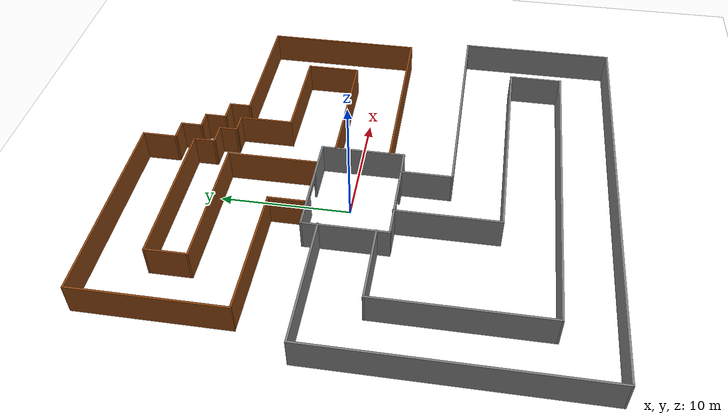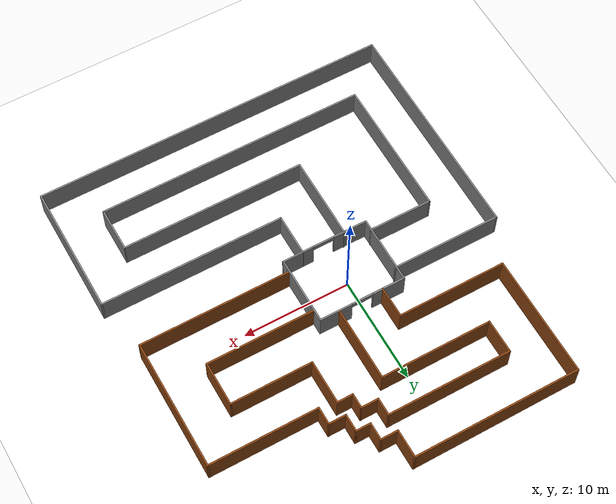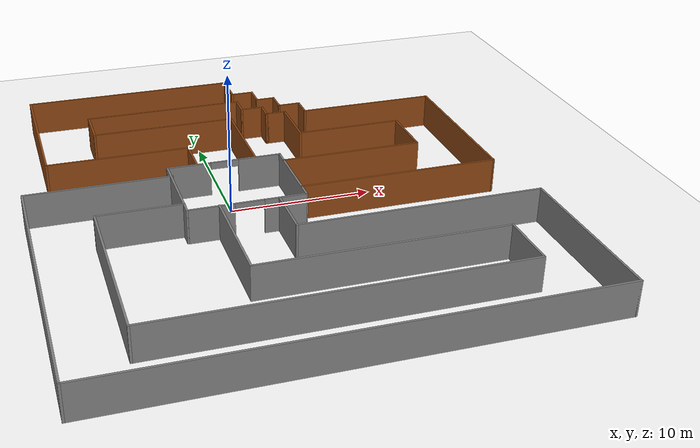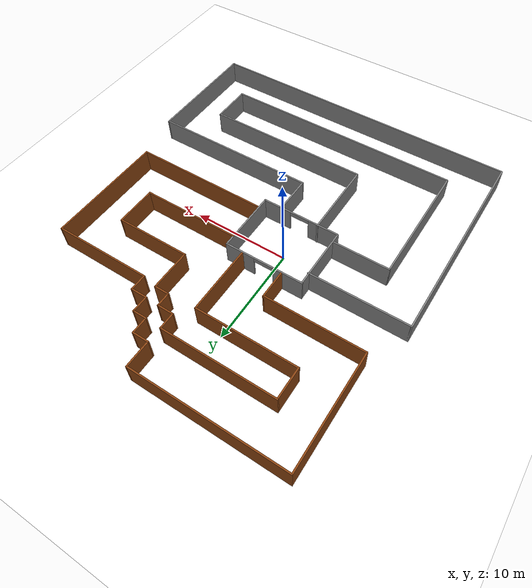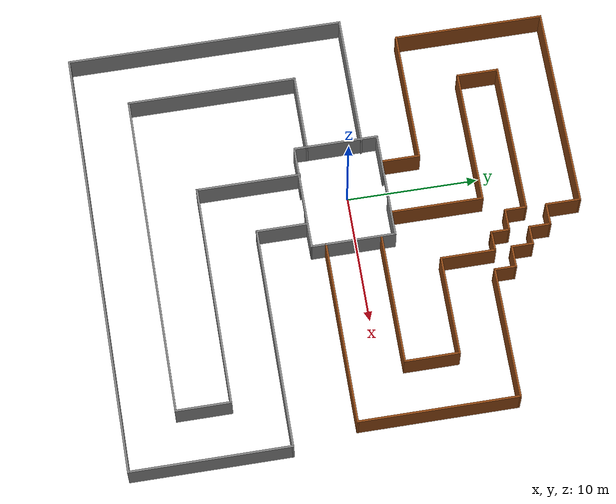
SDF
<sdf version='1.9'>
  <world name='default'>
    <gravity>0 0 -9.8</gravity>
    <magnetic_field>6e-06 2.3e-05 -4.2e-05</magnetic_field>
    <atmosphere type='adiabatic'/>
    <physics type='ode'>
      <max_step_size>0.001</max_step_size>
      <real_time_factor>1</real_time_factor>
      <real_time_update_rate>1000</real_time_update_rate>
    </physics>
    <plugin name='ignition::gazebo::systems::Physics' filename='ignition-gazebo-physics-system'/>
    <plugin name='ignition::gazebo::systems::UserCommands' filename='ignition-gazebo-user-commands-system'/>
    <plugin name='ignition::gazebo::systems::SceneBroadcaster' filename='ignition-gazebo-scene-broadcaster-system'/>
    <plugin name='ignition::gazebo::systems::Sensors' filename='ignition-gazebo-sensors-system'/>
    <plugin name='ignition::gazebo::systems::Contact' filename='libignition-gazebo-contact-system.so'/>
    <scene>
      <ambient>0.4 0.4 0.4 1</ambient>
      <background>0.7 0.7 0.7 1</background>
      <shadows>true</shadows>
    </scene>
    <spherical_coordinates>
      <surface_model>EARTH_WGS84</surface_model>
      <world_frame_orientation>ENU</world_frame_orientation>
      <latitude_deg>-22.9</latitude_deg>
      <longitude_deg>-43.2</longitude_deg>
      <elevation>0</elevation>
      <heading_deg>0</heading_deg>
    </spherical_coordinates>
    <model name='ground_plane'>
      <static>true</static>
      <link name='link'>
        <collision name='collision'>
          <geometry>
            <plane>
              <normal>0 0 1</normal>
              <size>100 100</size>
            </plane>
          </geometry>
          <surface>
            <friction>
              <ode/>
            </friction>
            <bounce/>
            <contact/>
          </surface>
        </collision>
        <visual name='visual'>
          <geometry>
            <plane>
              <normal>0 0 1</normal>
              <size>100 100</size>
            </plane>
          </geometry>
          <material>
            <ambient>1 1 1 1</ambient>
            <diffuse>1 1 1 1</diffuse>
            <specular>1 1 1 1</specular>
          </material>
        </visual>
        <pose>0 0 0 0 -0 0</pose>
        <inertial>
          <pose>0 0 0 0 -0 0</pose>
          <mass>1</mass>
          <inertia>
            <ixx>1</ixx>
            <ixy>0</ixy>
            <ixz>0</ixz>
            <iyy>1</iyy>
            <iyz>0</iyz>
            <izz>1</izz>
          </inertia>
        </inertial>
        <enable_wind>false</enable_wind>
      </link>
      <pose>0 0 0 0 -0 0</pose>
      <self_collide>false</self_collide>
    </model>
    <include>
      <uri>file:///home/rafael/Documents/objects/indoor_no_doors_2</uri>
      <name>indoor_no_doors_2</name>
      <pose>2.87249 -1.15863 0 0 -0 0</pose>
    </include>
    <light name='sun' type='directional'>
      <pose>0 0 10 0 -0 0</pose>
      <cast_shadows>true</cast_shadows>
      <intensity>1</intensity>
      <direction>-0.5 0.1 -0.9</direction>
      <diffuse>0.8 0.8 0.8 1</diffuse>
      <specular>0.2 0.2 0.2 1</specular>
      <attenuation>
        <range>1000</range>
        <linear>0.01</linear>
        <constant>0.90000000000000002</constant>
        <quadratic>0.001</quadratic>
      </attenuation>
      <spot>
        <inner_angle>0</inner_angle>
        <outer_angle>0</outer_angle>
        <falloff>0</falloff>
      </spot>
    </light>

  </world>
</sdf>
